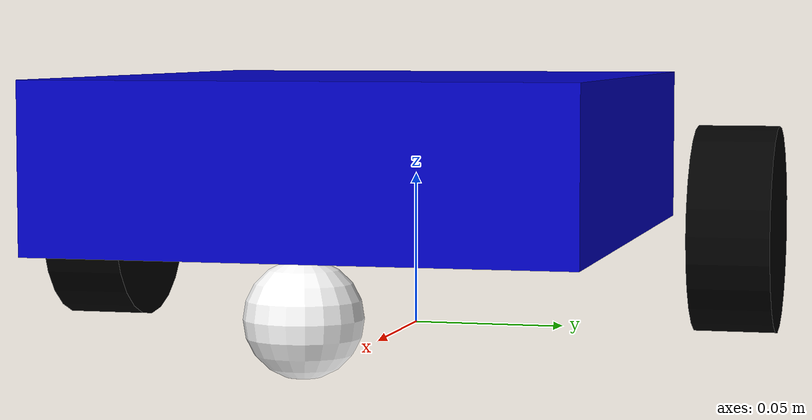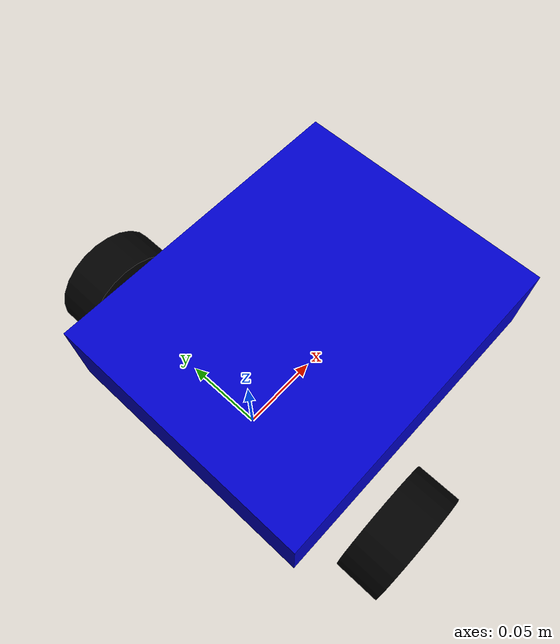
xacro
<?xml version="1.0"?>
<robot xmlns:xacro="http://www.ros.org/wiki/xacro">

    <material name="blue"><color rgba="0 0 0.8 1"/></material>
    <material name="black"><color rgba="0 0 0 1"/></material>
    <material name="white"><color rgba="1 1 1 1"/></material>

    <link name="base_footprint"/>

    <joint name="base_footprint_joint" type="fixed">
        <parent link="base_footprint"/>
        <child link="base_link"/>
        <origin xyz="0 0 0.0335" rpy="0 0 0"/>
    </joint>

    <link name="base_link">
        <inertial>
            <mass value="0.1"/>
            <inertia ixx="0.0001" ixy="0" ixz="0" iyy="0.0001" iyz="0" izz="0.0001"/>
        </inertial>
    </link>

    <joint name="chassis_joint" type="fixed">
        <parent link="base_link"/>
        <child link="chassis"/>
        <origin xyz="0 0 0"/>
    </joint>

    <link name="chassis">
        <visual>
            <origin xyz="0.0465 0 0.025" rpy="0 0 0"/>
            <geometry>
                <box size="0.193 0.160 0.05"/>
            </geometry>
            <material name="blue"/>
        </visual>

        <collision>
            <origin xyz="0.0465 0 0.025" rpy="0 0 0"/>
            <geometry>
                <box size="0.193 0.160 0.05"/>
            </geometry>
        </collision>

        <inertial>
            <origin xyz="0.0465 0 0.025" rpy="0 0 0"/>
            <mass value="1.5"/>
            <inertia ixx="0.004" ixy="0" ixz="0" iyy="0.006" iyz="0" izz="0.007"/>
        </inertial>
    </link>

    <gazebo reference="chassis">
        <material>Gazebo/Blue</material>
    </gazebo>

    <joint name="caster_wheel_joint" type="fixed">
        <parent link="chassis"/>
        <child link="caster_wheel"/>
        <origin xyz="0.13 0 0" rpy="0 0 0"/>
    </joint>

    <link name="caster_wheel">
        <visual>
            <origin xyz="0 0 -0.0165"/> <geometry>
                <sphere radius="0.017"/> </geometry>
            <material name="white"/>
        </visual>
        <collision>
            <origin xyz="0 0 -0.0165"/>
            <geometry>
                <sphere radius="0.017"/>
            </geometry>
        </collision>
        <inertial>
            <mass value="0.1"/>
            <inertia ixx="0.0001" ixy="0" ixz="0" iyy="0.0001" iyz="0" izz="0.0001"/>
        </inertial>
    </link>

    <gazebo reference="caster_wheel">
        <material>Gazebo/White</material>
        <mu1 value="0.001"/>
        <mu2 value="0.001"/>
    </gazebo>

    <xacro:macro name="wheel" params="prefix y_offset">
        <joint name="${prefix}_wheel_joint" type="continuous">
            <parent link="base_link"/>
            <child link="${prefix}_wheel"/>
            <origin xyz="0 ${y_offset} 0" rpy="-${pi/2} 0 0"/>
            <axis xyz="0 0 1"/>
        </joint>

        <link name="${prefix}_wheel">
            <visual>
                <geometry>
                    <cylinder radius="0.0335" length="0.026"/>
                </geometry>
                <material name="black"/>
            </visual>
            <collision>
                <geometry>
                    <cylinder radius="0.0335" length="0.026"/>
                </geometry>
            </collision>
            <inertial>
                <mass value="0.2"/>
                <inertia ixx="0.0002" ixy="0" ixz="0" iyy="0.0002" iyz="0" izz="0.0002"/>
            </inertial>
        </link>

        <gazebo reference="${prefix}_wheel">
            <material>Gazebo/Black</material>
            <mu1 value="1.0"/>
            <mu2 value="1.0"/>
        </gazebo>
    </xacro:macro>

    <xacro:wheel prefix="left" y_offset="0.1075" />
    <xacro:wheel prefix="right" y_offset="-0.1075" />

</robot>
